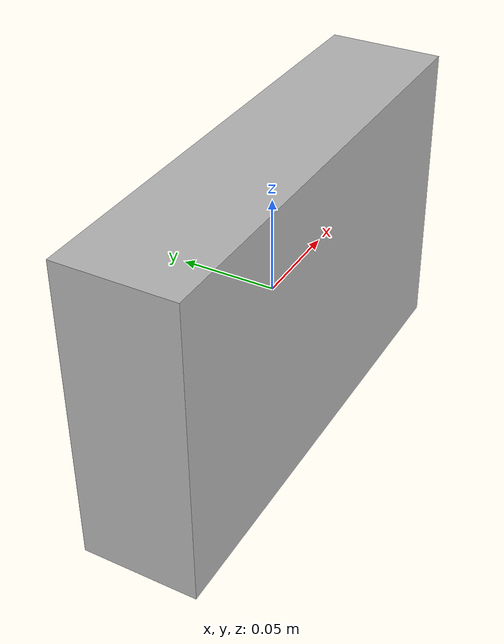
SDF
<?xml version="1.0"?>
<sdf version="1.8">
  <model name="erc_book">
    <link name="book_base_link">

      <inertial>
        <pose>-6.97503397632341E-18 0.025 0 0 0 0</pose>
        <mass>0.3</mass>
        <inertia>
          <ixx>0.000702500</ixx>
          <ixy>5.421010862E-21</ixy>
          <ixz>-6.5594231435E-20</ixz>
          <iyy>0.002202500</iyy>
          <iyz>0</iyz>
          <izz>0.001625000</izz>
        </inertia>
      </inertial>

      <visual name="base_link_book_visual">
        <pose>0 0 0 0 0 0</pose>
        <geometry>
          <box>
            <size>0.25 0.06 0.16</size>
          </box>
        </geometry>
        <material>
          <ambient>BOOK_COLOUR_PLACEHOLDER</ambient>
          <diffuse>BOOK_COLOUR_PLACEHOLDER</diffuse>
        </material>
      </visual>

      <collision name="base_link_book_collision">
        <pose>0 0 0 0 0 0</pose>
        <max_contacts>4</max_contacts>

        <geometry>
          <box>
            <size>0.25 0.06 0.16</size>
          </box>
        </geometry>
        <!-- Explicit friction so books sit on the shelf without sliding and the
             gripper can hold them. Was previously inheriting the world default. -->
        <surface>
          <friction>
            <ode>
              <mu>1.0</mu>
              <mu2>1.0</mu2>
            </ode>
          </friction>
          <contact>
            <ode>
              <!-- Softer contact than a rigid default reduces solver stress and
                   jitter for many resting books; tune if grasps feel spongy. -->
              <kp>100000.0</kp>
              <kd>1.0</kd>
            </ode>
          </contact>
        </surface>
      </collision>

    </link>
  </model>
</sdf>
